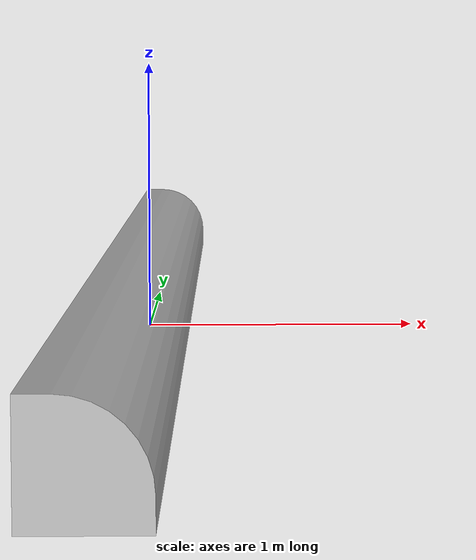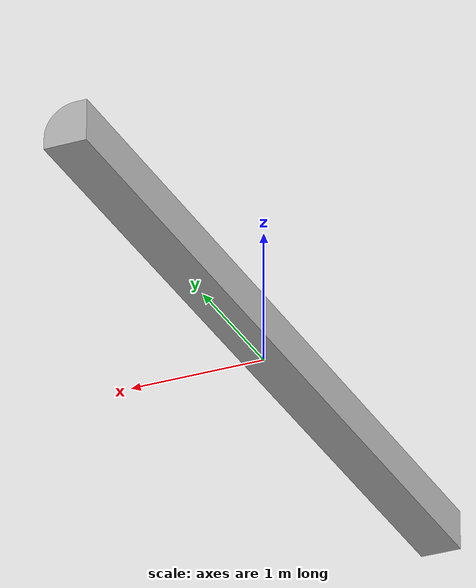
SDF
<?xml version="1.0" ?>
<sdf version="1.7">
  <model name="sari_duba">
    <static>false</static>
    <link name="link">
      <inertial>
        <mass>10.0</mass>
        <inertia>
          <ixx>1.0</ixx><ixy>0</ixy><ixz>0</ixz><iyy>1.0</iyy><iyz>0</iyz><izz>1.0</izz>
        </inertia>
      </inertial>

      <visual name="visual">
        <geometry>
          <mesh>
            <uri>model://sari_duba/meshes/sari_duba.obj</uri>
          </mesh>
        </geometry>
      </visual>

      <collision name="collision">
        <pose>0 3.14 0.15 0 0 0</pose>
        <geometry>
          <box>
            <size>0.305265 6.29114 0.305265</size>
          </box>
        </geometry>
      </collision>
    </link>
  </model>
</sdf>
